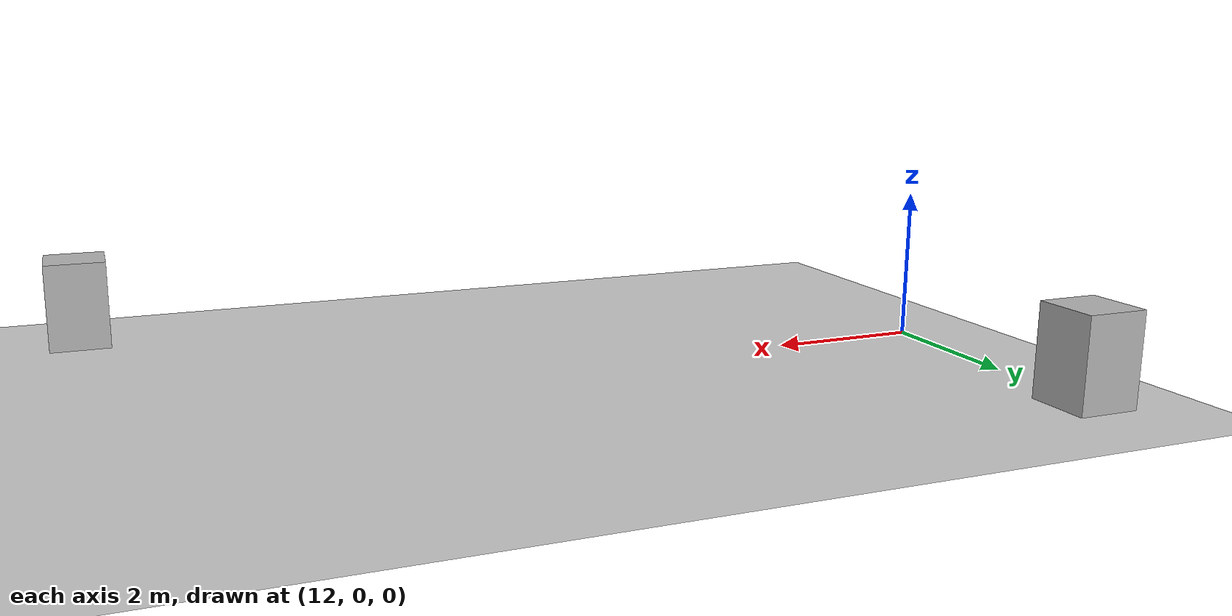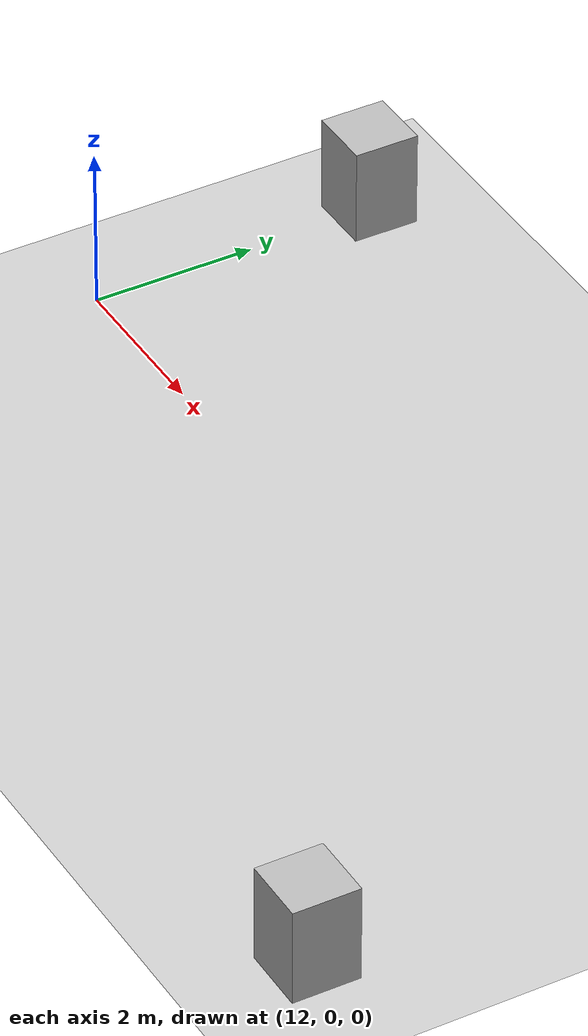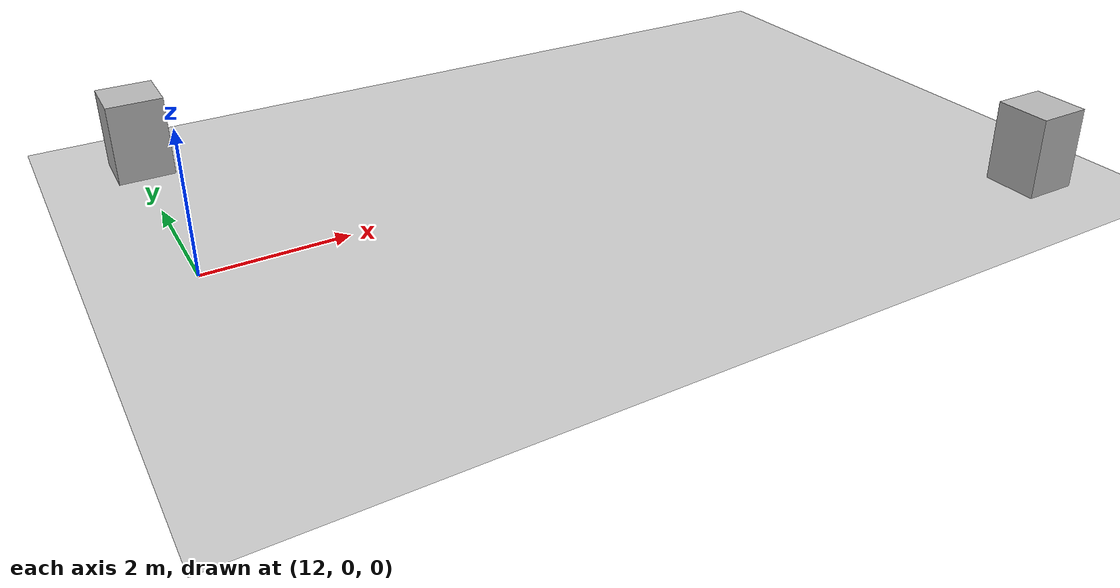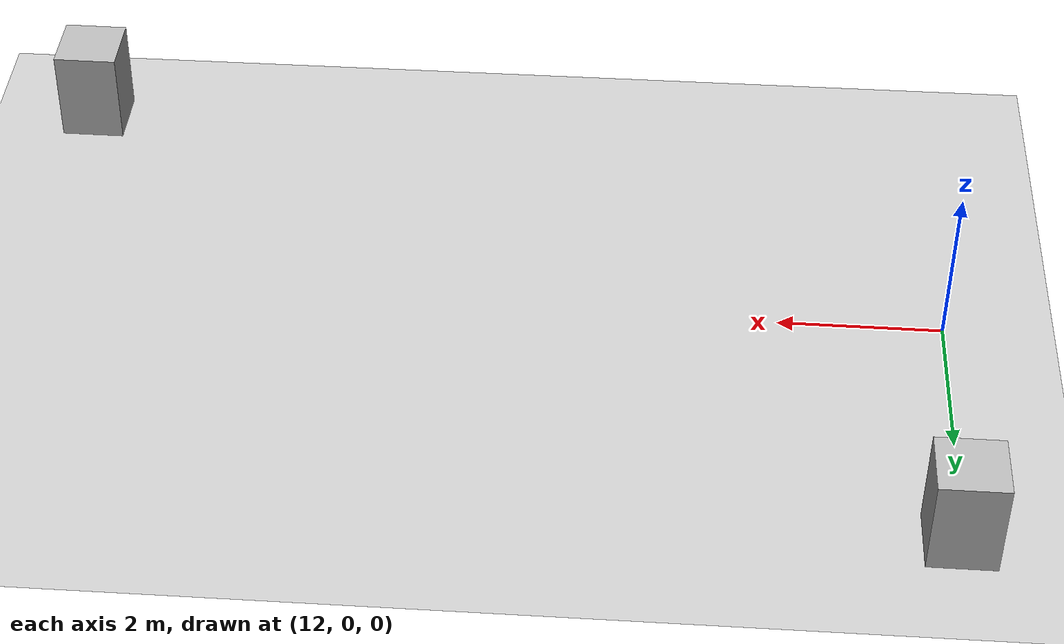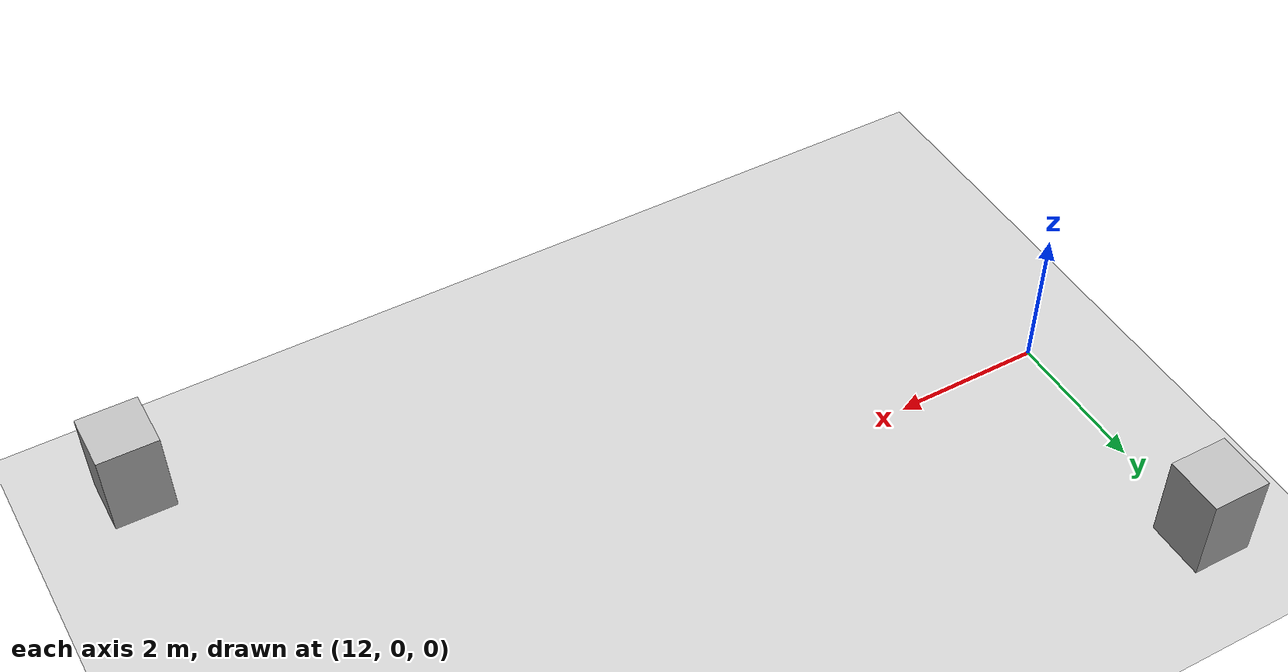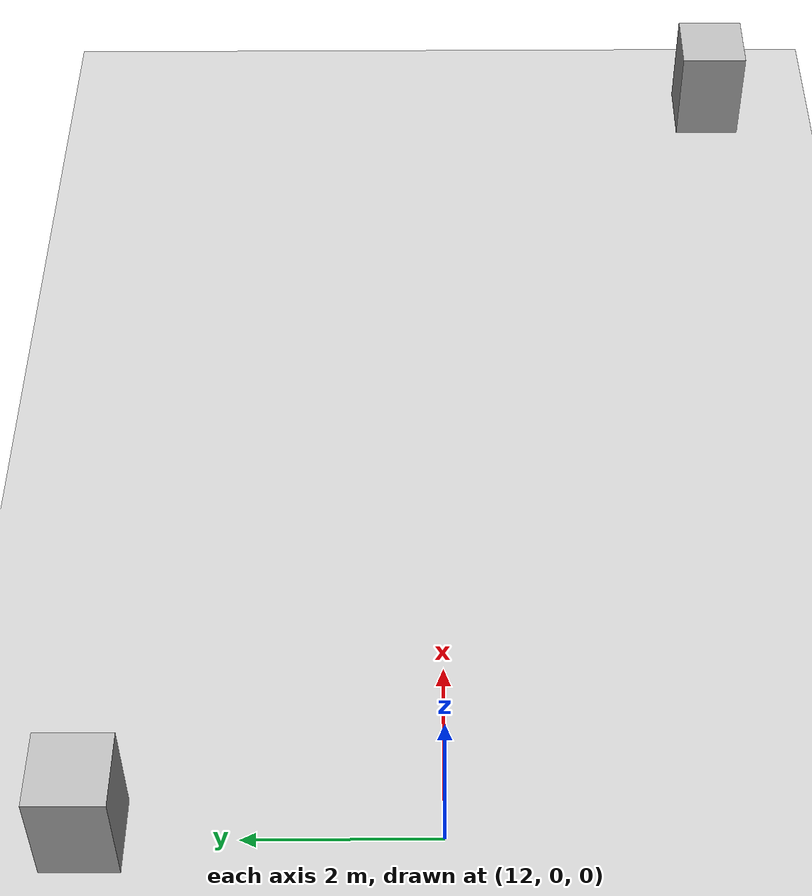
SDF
<?xml version="1.0"?>
<sdf version="1.6">
  <world name="v2-04g-p2-q1-support-cruise-probe-s5343">
    <gravity>0 0 -9.81</gravity>
    <physics name="v2_deterministic" type="ode">
      <max_step_size>0.002</max_step_size>
      <real_time_update_rate>500</real_time_update_rate>
    </physics>
    <include>
      <uri>model://sun</uri>
    </include>
    <include>
      <uri>model://ground_plane</uri>
    </include>
    <model name="cruise-left">
      <static>true</static>
      <pose>12.055388919 3.524088387 0.600000000 0 0 -0.003755066</pose>
      <link name="link">
        <collision name="collision">
          <geometry>
            <box>
              <size>0.800000 0.800000 1.200000</size>
            </box>
          </geometry>
        </collision>
        <visual name="visual">
          <geometry>
            <box>
              <size>0.800000 0.800000 1.200000</size>
            </box>
          </geometry>
        </visual>
      </link>
    </model>
    <model name="cruise-right">
      <static>true</static>
      <pose>23.039631331 -3.554613424 0.600000000 0 0 -0.007585847</pose>
      <link name="link">
        <collision name="collision">
          <geometry>
            <box>
              <size>0.800000 0.800000 1.200000</size>
            </box>
          </geometry>
        </collision>
        <visual name="visual">
          <geometry>
            <box>
              <size>0.800000 0.800000 1.200000</size>
            </box>
          </geometry>
        </visual>
      </link>
    </model>
  </world>
</sdf>
